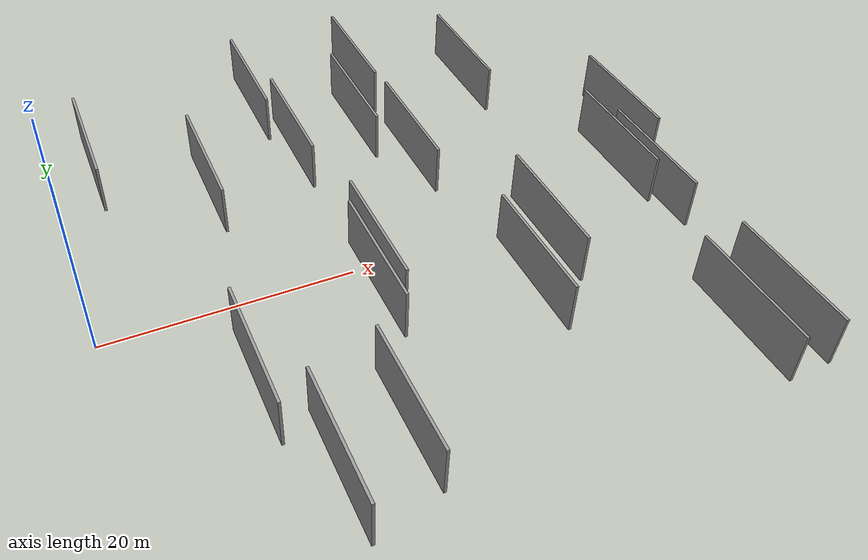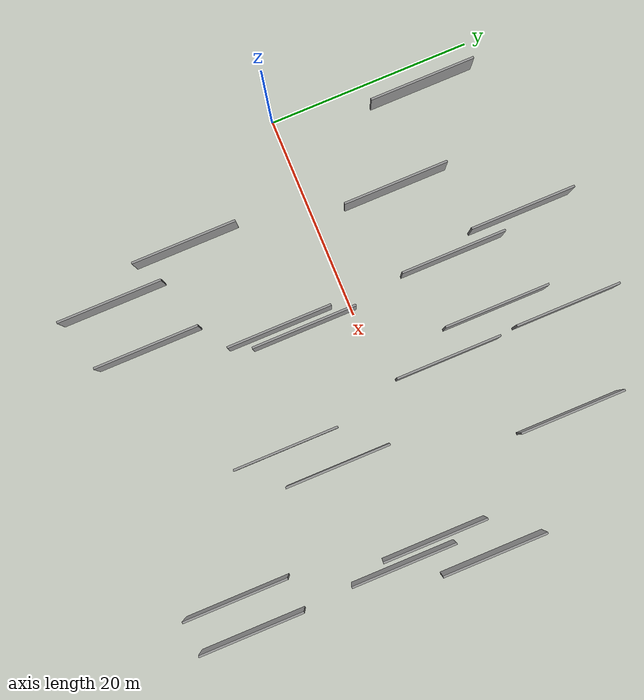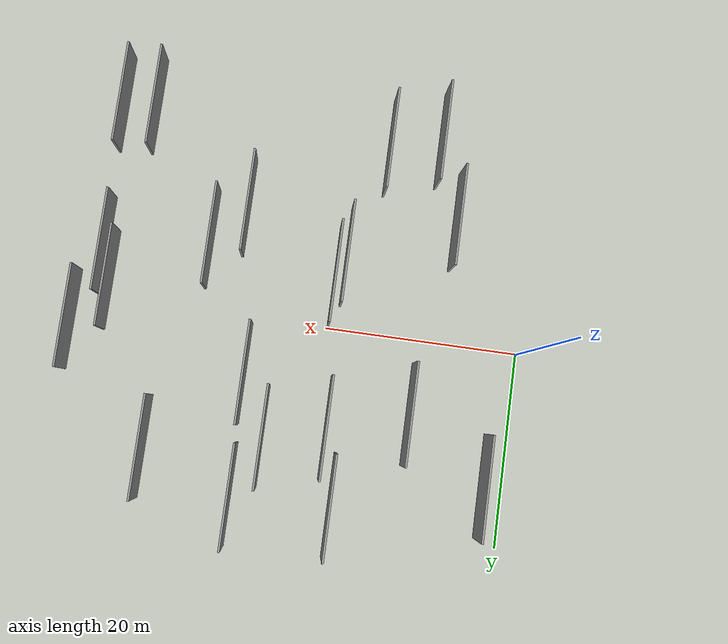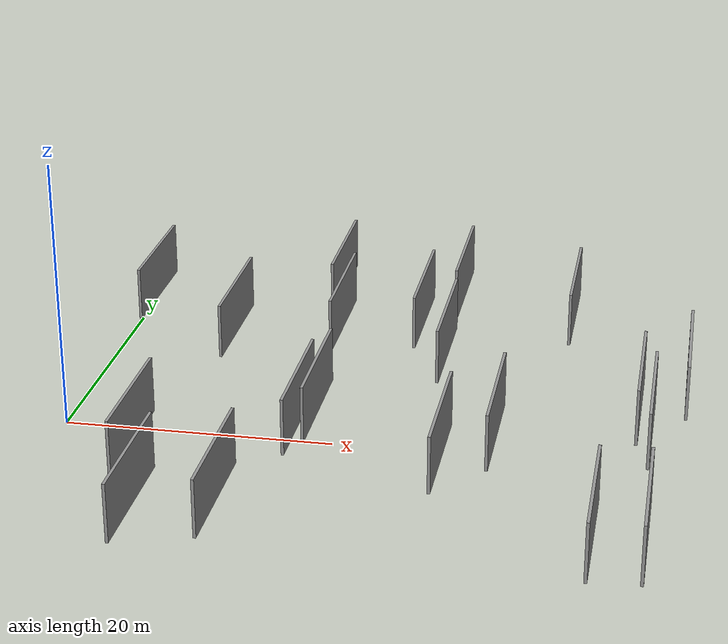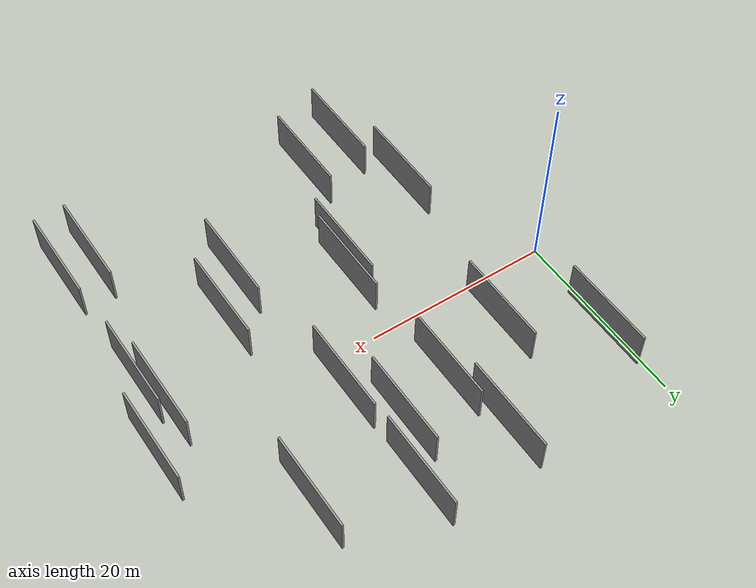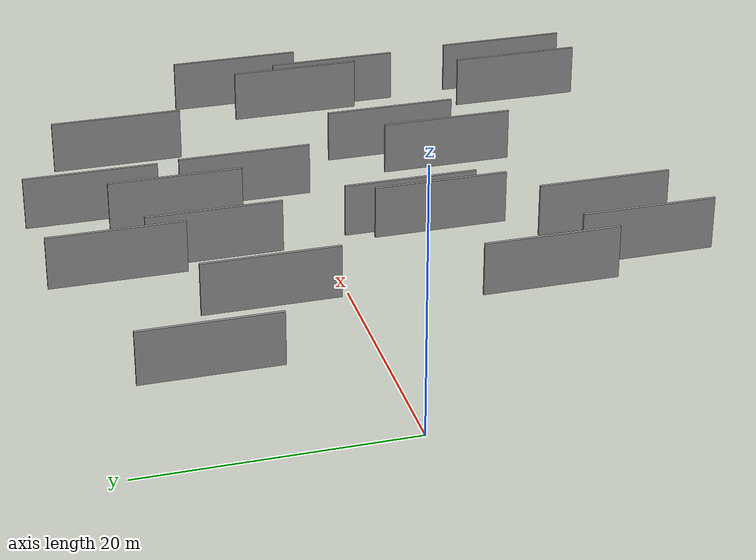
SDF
<sdf version="1.6">
 <world name="default">
  <scene>
   <sky><clouds><speed>12</speed></clouds></sky>
   <ambient>0.4 0.4 0.4 1</ambient>
   <background>0.7 0.7 0.7 1</background>
   <shadows>1</shadows>
  </scene>
  <gravity>0 0 -9.8066</gravity>
  <magnetic_field>6e-06 2.3e-05 -4.2e-05</magnetic_field>
  <physics default="0" name="default_physics" type="ode">
   <ode>
    <solver>
     <type>quick</type>
     <iters>10</iters>
     <sor>1.0</sor>
     <use_dynamic_moi_rescaling>0</use_dynamic_moi_rescaling>
    </solver>
    <constraints>
     <cfm>0</cfm>
     <erp>0.2</erp>
     <contact_max_correcting_vel>100</contact_max_correcting_vel>
     <contact_surface_layer>0.001</contact_surface_layer>
    </constraints>
   </ode>
   <max_step_size>0.004</max_step_size>
   <real_time_factor>1</real_time_factor>
   <real_time_update_rate>250</real_time_update_rate>
  </physics>
  <light name="sun" type="directional">
   <pose>0 0 10 0 0 0</pose>
   <diffuse>0.8 0.8 0.8 1</diffuse>
   <specular>0.2 0.2 0.2 1</specular>
   <attenuation>
    <range>1000</range>
    <constant>0.9</constant>
    <linear>0.01</linear>
    <quadratic>0.001</quadratic>
   </attenuation>
   <direction>-0.5 0.1 -0.9</direction>
  </light>
  <model name="grey_wall_1">
   <static>1</static>
   <pose>19.9486 -4.7746 5.0 0.000000 0.000000 1.570796</pose>
   <link name="link">
    <pose>0 0 2.00 0 0 0</pose>
    <collision name="collision"><geometry><box><size>10.00 0.2 4.00</size></box></geometry></collision>
    <visual name="visual">
     <cast_shadows>0</cast_shadows>
     <geometry><box><size>10.00 0.2 4.00</size></box></geometry>
     <material>
      <script>
       <uri>model://grey_wall/materials/scripts</uri>
       <uri>model://grey_wall/materials/textures</uri>
       <name>vrc/grey_wall</name>
      </script>
     </material>
    </visual>
   </link>
  </model>
  <model name="grey_wall_2">
   <static>1</static>
   <pose>18.8930 10.1252 5.0 0.000000 0.000000 1.570796</pose>
   <link name="link">
    <pose>0 0 2.00 0 0 0</pose>
    <collision name="collision"><geometry><box><size>10.00 0.2 4.00</size></box></geometry></collision>
    <visual name="visual">
     <cast_shadows>0</cast_shadows>
     <geometry><box><size>10.00 0.2 4.00</size></box></geometry>
     <material>
      <script>
       <uri>model://grey_wall/materials/scripts</uri>
       <uri>model://grey_wall/materials/textures</uri>
       <name>vrc/grey_wall</name>
      </script>
     </material>
    </visual>
   </link>
  </model>
  <model name="grey_wall_3">
   <static>1</static>
   <pose>29.3117 -10.4339 5.0 0.000000 0.000000 1.570796</pose>
   <link name="link">
    <pose>0 0 2.00 0 0 0</pose>
    <collision name="collision"><geometry><box><size>10.00 0.2 4.00</size></box></geometry></collision>
    <visual name="visual">
     <cast_shadows>0</cast_shadows>
     <geometry><box><size>10.00 0.2 4.00</size></box></geometry>
     <material>
      <script>
       <uri>model://grey_wall/materials/scripts</uri>
       <uri>model://grey_wall/materials/textures</uri>
       <name>vrc/grey_wall</name>
      </script>
     </material>
    </visual>
   </link>
  </model>
  <model name="grey_wall_4">
   <static>1</static>
   <pose>42.7862 -4.7246 5.0 0.000000 0.000000 1.570796</pose>
   <link name="link">
    <pose>0 0 2.00 0 0 0</pose>
    <collision name="collision"><geometry><box><size>10.00 0.2 4.00</size></box></geometry></collision>
    <visual name="visual">
     <cast_shadows>0</cast_shadows>
     <geometry><box><size>10.00 0.2 4.00</size></box></geometry>
     <material>
      <script>
       <uri>model://grey_wall/materials/scripts</uri>
       <uri>model://grey_wall/materials/textures</uri>
       <name>vrc/grey_wall</name>
      </script>
     </material>
    </visual>
   </link>
  </model>
  <model name="grey_wall_5">
   <static>1</static>
   <pose>19.0586 -6.8090 5.0 0.000000 0.000000 1.570796</pose>
   <link name="link">
    <pose>0 0 2.00 0 0 0</pose>
    <collision name="collision"><geometry><box><size>10.00 0.2 4.00</size></box></geometry></collision>
    <visual name="visual">
     <cast_shadows>0</cast_shadows>
     <geometry><box><size>10.00 0.2 4.00</size></box></geometry>
     <material>
      <script>
       <uri>model://grey_wall/materials/scripts</uri>
       <uri>model://grey_wall/materials/textures</uri>
       <name>vrc/grey_wall</name>
      </script>
     </material>
    </visual>
   </link>
  </model>
  <model name="grey_wall_6">
   <static>1</static>
   <pose>41.8627 -1.3553 5.0 0.000000 0.000000 1.570796</pose>
   <link name="link">
    <pose>0 0 2.00 0 0 0</pose>
    <collision name="collision"><geometry><box><size>10.00 0.2 4.00</size></box></geometry></collision>
    <visual name="visual">
     <cast_shadows>0</cast_shadows>
     <geometry><box><size>10.00 0.2 4.00</size></box></geometry>
     <material>
      <script>
       <uri>model://grey_wall/materials/scripts</uri>
       <uri>model://grey_wall/materials/textures</uri>
       <name>vrc/grey_wall</name>
      </script>
     </material>
    </visual>
   </link>
  </model>
  <model name="grey_wall_7">
   <static>1</static>
   <pose>24.8526 11.7892 5.0 0.000000 0.000000 1.570796</pose>
   <link name="link">
    <pose>0 0 2.00 0 0 0</pose>
    <collision name="collision"><geometry><box><size>10.00 0.2 4.00</size></box></geometry></collision>
    <visual name="visual">
     <cast_shadows>0</cast_shadows>
     <geometry><box><size>10.00 0.2 4.00</size></box></geometry>
     <material>
      <script>
       <uri>model://grey_wall/materials/scripts</uri>
       <uri>model://grey_wall/materials/textures</uri>
       <name>vrc/grey_wall</name>
      </script>
     </material>
    </visual>
   </link>
  </model>
  <model name="grey_wall_8">
   <static>1</static>
   <pose>8.8093 -11.8002 5.0 0.000000 0.000000 1.570796</pose>
   <link name="link">
    <pose>0 0 2.00 0 0 0</pose>
    <collision name="collision"><geometry><box><size>10.00 0.2 4.00</size></box></geometry></collision>
    <visual name="visual">
     <cast_shadows>0</cast_shadows>
     <geometry><box><size>10.00 0.2 4.00</size></box></geometry>
     <material>
      <script>
       <uri>model://grey_wall/materials/scripts</uri>
       <uri>model://grey_wall/materials/textures</uri>
       <name>vrc/grey_wall</name>
      </script>
     </material>
    </visual>
   </link>
  </model>
  <model name="grey_wall_9">
   <static>1</static>
   <pose>11.1776 -19.9244 5.0 0.000000 0.000000 1.570796</pose>
   <link name="link">
    <pose>0 0 2.00 0 0 0</pose>
    <collision name="collision"><geometry><box><size>10.00 0.2 4.00</size></box></geometry></collision>
    <visual name="visual">
     <cast_shadows>0</cast_shadows>
     <geometry><box><size>10.00 0.2 4.00</size></box></geometry>
     <material>
      <script>
       <uri>model://grey_wall/materials/scripts</uri>
       <uri>model://grey_wall/materials/textures</uri>
       <name>vrc/grey_wall</name>
      </script>
     </material>
    </visual>
   </link>
  </model>
  <model name="grey_wall_10">
   <static>1</static>
   <pose>39.8843 -19.5996 5.0 0.000000 0.000000 1.570796</pose>
   <link name="link">
    <pose>0 0 2.00 0 0 0</pose>
    <collision name="collision"><geometry><box><size>10.00 0.2 4.00</size></box></geometry></collision>
    <visual name="visual">
     <cast_shadows>0</cast_shadows>
     <geometry><box><size>10.00 0.2 4.00</size></box></geometry>
     <material>
      <script>
       <uri>model://grey_wall/materials/scripts</uri>
       <uri>model://grey_wall/materials/textures</uri>
       <name>vrc/grey_wall</name>
      </script>
     </material>
    </visual>
   </link>
  </model>
  <model name="grey_wall_11">
   <static>1</static>
   <pose>3.3734 13.6194 5.0 0.000000 0.000000 1.570796</pose>
   <link name="link">
    <pose>0 0 2.00 0 0 0</pose>
    <collision name="collision"><geometry><box><size>10.00 0.2 4.00</size></box></geometry></collision>
    <visual name="visual">
     <cast_shadows>0</cast_shadows>
     <geometry><box><size>10.00 0.2 4.00</size></box></geometry>
     <material>
      <script>
       <uri>model://grey_wall/materials/scripts</uri>
       <uri>model://grey_wall/materials/textures</uri>
       <name>vrc/grey_wall</name>
      </script>
     </material>
    </visual>
   </link>
  </model>
  <model name="grey_wall_12">
   <static>1</static>
   <pose>36.1119 14.2864 5.0 0.000000 0.000000 1.570796</pose>
   <link name="link">
    <pose>0 0 2.00 0 0 0</pose>
    <collision name="collision"><geometry><box><size>10.00 0.2 4.00</size></box></geometry></collision>
    <visual name="visual">
     <cast_shadows>0</cast_shadows>
     <geometry><box><size>10.00 0.2 4.00</size></box></geometry>
     <material>
      <script>
       <uri>model://grey_wall/materials/scripts</uri>
       <uri>model://grey_wall/materials/textures</uri>
       <name>vrc/grey_wall</name>
      </script>
     </material>
    </visual>
   </link>
  </model>
  <model name="grey_wall_13">
   <static>1</static>
   <pose>43.1384 -19.3971 5.0 0.000000 0.000000 1.570796</pose>
   <link name="link">
    <pose>0 0 2.00 0 0 0</pose>
    <collision name="collision"><geometry><box><size>10.00 0.2 4.00</size></box></geometry></collision>
    <visual name="visual">
     <cast_shadows>0</cast_shadows>
     <geometry><box><size>10.00 0.2 4.00</size></box></geometry>
     <material>
      <script>
       <uri>model://grey_wall/materials/scripts</uri>
       <uri>model://grey_wall/materials/textures</uri>
       <name>vrc/grey_wall</name>
      </script>
     </material>
    </visual>
   </link>
  </model>
  <model name="grey_wall_14">
   <static>1</static>
   <pose>11.1633 7.7642 5.0 0.000000 0.000000 1.570796</pose>
   <link name="link">
    <pose>0 0 2.00 0 0 0</pose>
    <collision name="collision"><geometry><box><size>10.00 0.2 4.00</size></box></geometry></collision>
    <visual name="visual">
     <cast_shadows>0</cast_shadows>
     <geometry><box><size>10.00 0.2 4.00</size></box></geometry>
     <material>
      <script>
       <uri>model://grey_wall/materials/scripts</uri>
       <uri>model://grey_wall/materials/textures</uri>
       <name>vrc/grey_wall</name>
      </script>
     </material>
    </visual>
   </link>
  </model>
  <model name="grey_wall_15">
   <static>1</static>
   <pose>45.0238 3.0104 5.0 0.000000 0.000000 1.570796</pose>
   <link name="link">
    <pose>0 0 2.00 0 0 0</pose>
    <collision name="collision"><geometry><box><size>10.00 0.2 4.00</size></box></geometry></collision>
    <visual name="visual">
     <cast_shadows>0</cast_shadows>
     <geometry><box><size>10.00 0.2 4.00</size></box></geometry>
     <material>
      <script>
       <uri>model://grey_wall/materials/scripts</uri>
       <uri>model://grey_wall/materials/textures</uri>
       <name>vrc/grey_wall</name>
      </script>
     </material>
    </visual>
   </link>
  </model>
  <model name="grey_wall_16">
   <static>1</static>
   <pose>27.1819 17.6710 5.0 0.000000 0.000000 1.570796</pose>
   <link name="link">
    <pose>0 0 2.00 0 0 0</pose>
    <collision name="collision"><geometry><box><size>10.00 0.2 4.00</size></box></geometry></collision>
    <visual name="visual">
     <cast_shadows>0</cast_shadows>
     <geometry><box><size>10.00 0.2 4.00</size></box></geometry>
     <material>
      <script>
       <uri>model://grey_wall/materials/scripts</uri>
       <uri>model://grey_wall/materials/textures</uri>
       <name>vrc/grey_wall</name>
      </script>
     </material>
    </visual>
   </link>
  </model>
  <model name="grey_wall_17">
   <static>1</static>
   <pose>32.5133 -6.7537 5.0 0.000000 0.000000 1.570796</pose>
   <link name="link">
    <pose>0 0 2.00 0 0 0</pose>
    <collision name="collision"><geometry><box><size>10.00 0.2 4.00</size></box></geometry></collision>
    <visual name="visual">
     <cast_shadows>0</cast_shadows>
     <geometry><box><size>10.00 0.2 4.00</size></box></geometry>
     <material>
      <script>
       <uri>model://grey_wall/materials/scripts</uri>
       <uri>model://grey_wall/materials/textures</uri>
       <name>vrc/grey_wall</name>
      </script>
     </material>
    </visual>
   </link>
  </model>
  <model name="grey_wall_18">
   <static>1</static>
   <pose>17.6224 17.3749 5.0 0.000000 0.000000 1.570796</pose>
   <link name="link">
    <pose>0 0 2.00 0 0 0</pose>
    <collision name="collision"><geometry><box><size>10.00 0.2 4.00</size></box></geometry></collision>
    <visual name="visual">
     <cast_shadows>0</cast_shadows>
     <geometry><box><size>10.00 0.2 4.00</size></box></geometry>
     <material>
      <script>
       <uri>model://grey_wall/materials/scripts</uri>
       <uri>model://grey_wall/materials/textures</uri>
       <name>vrc/grey_wall</name>
      </script>
     </material>
    </visual>
   </link>
  </model>
  <model name="grey_wall_19">
   <static>1</static>
   <pose>16.2223 -18.4495 5.0 0.000000 0.000000 1.570796</pose>
   <link name="link">
    <pose>0 0 2.00 0 0 0</pose>
    <collision name="collision"><geometry><box><size>10.00 0.2 4.00</size></box></geometry></collision>
    <visual name="visual">
     <cast_shadows>0</cast_shadows>
     <geometry><box><size>10.00 0.2 4.00</size></box></geometry>
     <material>
      <script>
       <uri>model://grey_wall/materials/scripts</uri>
       <uri>model://grey_wall/materials/textures</uri>
       <name>vrc/grey_wall</name>
      </script>
     </material>
    </visual>
   </link>
  </model>
  <model name="grey_wall_20">
   <static>1</static>
   <pose>27.4145 6.0340 5.0 0.000000 0.000000 1.570796</pose>
   <link name="link">
    <pose>0 0 2.00 0 0 0</pose>
    <collision name="collision"><geometry><box><size>10.00 0.2 4.00</size></box></geometry></collision>
    <visual name="visual">
     <cast_shadows>0</cast_shadows>
     <geometry><box><size>10.00 0.2 4.00</size></box></geometry>
     <material>
      <script>
       <uri>model://grey_wall/materials/scripts</uri>
       <uri>model://grey_wall/materials/textures</uri>
       <name>vrc/grey_wall</name>
      </script>
     </material>
    </visual>
   </link>
  </model>
 </world>
</sdf>
